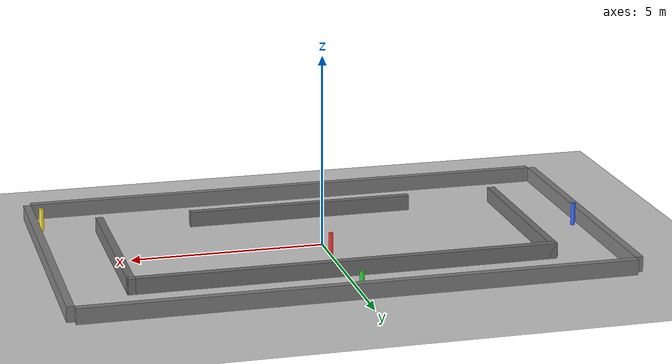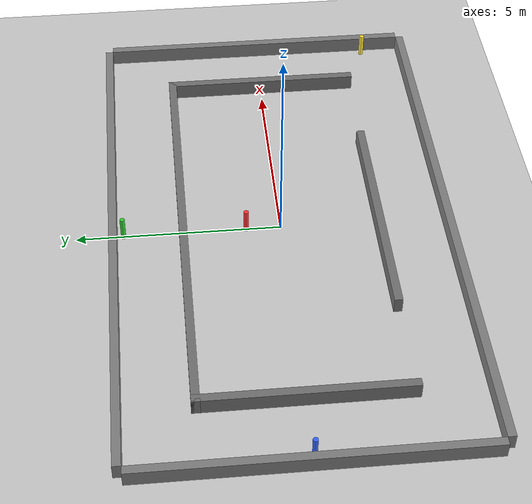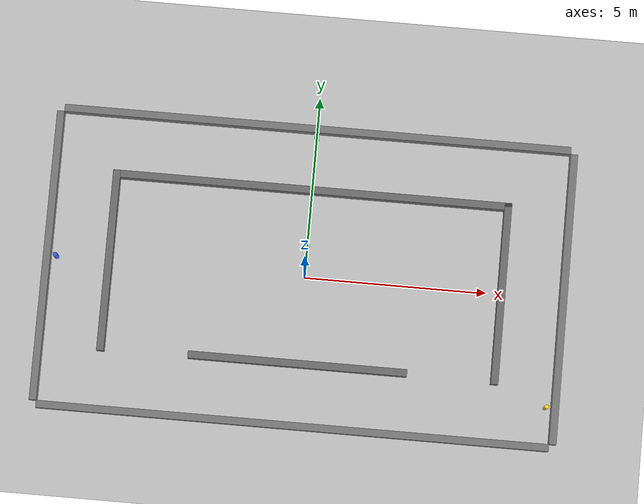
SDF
<sdf version='1.10'>
  <world name='teranova'>
    <physics name="dart" type="dart">
      <max_step_size>0.001</max_step_size>
      <real_time_factor>1</real_time_factor>
      <real_time_update_rate>1000</real_time_update_rate>
    </physics>
    <plugin filename="gz-sim-sensors-system" name="gz::sim::systems::Sensors">
  <render_engine>ogre2</render_engine>
  <frameName>base_link</frameName>
</plugin>
    <plugin name='gz::sim::systems::Physics' filename='gz-sim-physics-system'/>
    <plugin name='gz::sim::systems::UserCommands' filename='gz-sim-user-commands-system'/>
    <plugin name='gz::sim::systems::SceneBroadcaster' filename='gz-sim-scene-broadcaster-system'/>
    <plugin name='gz::sim::systems::Contact' filename='gz-sim-contact-system'/>
    <gravity>0 0 -9.8000000000000007</gravity>
    <magnetic_field>5.5644999999999998e-06 2.2875799999999999e-05 -4.2388400000000002e-05</magnetic_field>
    <atmosphere type='adiabatic'/>
    <scene>
      <ambient>0.400000006 0.400000006 0.400000006 1</ambient>
      <background>0.699999988 0.699999988 0.699999988 1</background>
      <shadows>true</shadows>
    </scene>

    <model name='ground_plane'>
      <static>true</static>
      <link name='link'>
        <collision name='collision'>
          <geometry>
            <plane>
              <normal>0 0 1</normal>
              <size>100 100</size>
            </plane>
          </geometry>
          <surface>
            <friction>
    <dart>
      <mu>1.0</mu>
      <mu2>0.8</mu2>
    </dart>
  </friction>
  <contact>
    <dart>
      <kp>3e5</kp>
      <kd>1.0</kd>
    </dart>
  </contact>
          </surface>
        </collision>
        <visual name='visual'>
          <geometry>
            <plane>
              <normal>0 0 1</normal>
              <size>100 100</size>
            </plane>
          </geometry>
          <material>
            <ambient>0.800000012 0.800000012 0.800000012 1</ambient>
            <diffuse>0.800000012 0.800000012 0.800000012 1</diffuse>
            <specular>0.800000012 0.800000012 0.800000012 1</specular>
          </material>
        </visual>
        <pose>0 0 0 0 0 0</pose>
        <inertial>
          <pose>0 0 0 0 0 0</pose>
          <mass>1</mass>
          <inertia>
            <ixx>1</ixx>
            <ixy>0</ixy>
            <ixz>0</ixz>
            <iyy>1</iyy>
            <iyz>0</iyz>
            <izz>1</izz>
          </inertia>
        </inertial>
        <enable_wind>false</enable_wind>
      </link>
      <pose>0 0 0 0 0 0</pose>
      <self_collide>false</self_collide>
    </model>

    <!-- Outer curbs (boundaries of the street) -->
    <!-- Top -->
    <model name="outer_top_curb">
      <static>true</static>
      <pose>0 4.1 0 0 0 0</pose>
      <link name="link">
        <pose>0 0 0.2 0 0 0</pose>
        <visual name="v">
          <geometry><box><size>14.0 0.2 0.4</size></box></geometry>
          <material><ambient>0.5 0.5 0.5 1</ambient></material>
          <laser_retro>200</laser_retro>
        </visual>
        <collision name="c">
          <geometry><box><size>14.0 0.2 0.4</size></box></geometry>
        </collision>
      </link>
    </model>
    <!-- Bottom -->
    <model name="outer_bottom_curb">
      <static>true</static>
      <pose>0 -4.1 0 0 0 0</pose>
      <link name="link">
        <pose>0 0 0.2 0 0 0</pose>
        <visual name="v">
          <geometry><box><size>14.0 0.2 0.4</size></box></geometry>
          <material><ambient>0.5 0.5 0.5 1</ambient></material>
          <laser_retro>200</laser_retro>
        </visual>
        <collision name="c">
          <geometry><box><size>14.0 0.2 0.4</size></box></geometry>
        </collision>
      </link>
    </model>
    <!-- Left -->
    <model name="outer_left_curb">
      <static>true</static>
      <pose>-7.1 0 0 0 0 1.57079632679</pose>
      <link name="link">
        <pose>0 0 0.2 0 0 0</pose>
        <visual name="v">
          <geometry><box><size>8.0 0.2 0.4</size></box></geometry>
          <material><ambient>0.5 0.5 0.5 1</ambient></material>
          <laser_retro>200</laser_retro>
        </visual>
        <collision name="c">
          <geometry><box><size>8.0 0.2 0.4</size></box></geometry>
        </collision>
      </link>
    </model>
    <!-- Right -->
    <model name="outer_right_curb">
      <static>true</static>
      <pose>7.1 0 0 0 0 1.57079632679</pose>
      <link name="link">
        <pose>0 0 0.2 0 0 0</pose>
        <visual name="v">
          <geometry><box><size>8.0 0.2 0.4</size></box></geometry>
          <material><ambient>0.5 0.5 0.5 1</ambient></material>
          <laser_retro>200</laser_retro>
        </visual>
        <collision name="c">
          <geometry><box><size>8.0 0.2 0.4</size></box></geometry>
        </collision>
      </link>
    </model>

    <!-- Inner curbs (island in the middle) -->
    <!-- Top inner -->
    <model name="inner_top_curb">
      <static>true</static>
      <!-- Center at y = 2.5 - 0.1 (outer face at y=+2.5) -->
      <pose>0 2.4 0 0 0 0</pose>
      <link name="link">
        <pose>0 0 0.2 0 0 0</pose>
        <visual name="v">
          <geometry><box><size>11.0 0.2 0.4</size></box></geometry>
          <material><ambient>0.45 0.45 0.45 1</ambient></material>
          <laser_retro>200</laser_retro>
        </visual>
        <collision name="c">
          <geometry><box><size>11.0 0.2 0.4</size></box></geometry>
        </collision>
      </link>
    </model>
    <!-- Bottom inner -->
    <model name="inner_bottom_curb">
      <static>true</static>
      <pose>0 -2.4 0 0 0 0</pose>
      <link name="link">
        <pose>0 0 0.2 0 0 0</pose>
        <visual name="v">
          <geometry><box><size>6.0 0.2 0.4</size></box></geometry>
          <material><ambient>0.45 0.45 0.45 1</ambient></material>
          <laser_retro>200</laser_retro>
        </visual>
        <collision name="c">
          <geometry><box><size>6.0 0.2 0.4</size></box></geometry>
        </collision>
      </link>
    </model>
    <!-- Left inner -->
    <model name="inner_left_curb">
      <static>true</static>
      <!-- Center at x = -5.5 + 0.1 (outer face at x=-5.5) -->
      <pose>-5.4 0 0 0 0 1.57079632679</pose>
      <link name="link">
        <pose>0 0 0.2 0 0 0</pose>
        <visual name="v">
          <geometry><box><size>5.0 0.2 0.4</size></box></geometry>
          <material><ambient>0.45 0.45 0.45 1</ambient></material>
          <laser_retro>200</laser_retro>
        </visual>
        <collision name="c">
          <geometry><box><size>5.0 0.2 0.4</size></box></geometry>
        </collision>
      </link>
    </model>
    <!-- Right inner -->
    <model name="inner_right_curb">
      <static>true</static>
      <pose>5.4 0 0 0 0 1.57079632679</pose>
      <link name="link">
        <pose>0 0 0.2 0 0 0</pose>
        <visual name="v">
          <geometry><box><size>5.0 0.2 0.4</size></box></geometry>
          <material><ambient>0.45 0.45 0.45 1</ambient></material>
          <laser_retro>200</laser_retro>
        </visual>
        <collision name="c">
          <geometry><box><size>5.0 0.2 0.4</size></box></geometry>
        </collision>
      </link>
    </model>

    <!-- Checkpoint markers (small posts the lidar can see) -->
    <!-- A: left mid-lane -->
    <model name="checkpoint_A">
      <static>true</static>
      <pose>-6.85 0 0 0 0 0</pose>
      <link name="link">
        <pose>0 0 0.3 0 0 0</pose>
        <visual name="v">
          <geometry><cylinder><radius>0.06</radius><length>0.6</length></cylinder></geometry>
         <material><ambient>0.2 0.4 1 1</ambient><diffuse>0.2 0.4 1 1</diffuse></material>
          <laser_retro>300</laser_retro>
        </visual>
        <collision name="c">
          <geometry><cylinder><radius>0.06</radius><length>0.6</length></cylinder></geometry>
        </collision>
      </link>
    </model>

    <!-- B: top mid-lane -->
    <model name="checkpoint_B">
      <static>true</static>
      <pose>0 3.85 0 0 0 0</pose>
      <link name="link">
        <pose>0 0 0.3 0 0 0</pose>
        <visual name="v">
          <geometry><cylinder><radius>0.06</radius><length>0.6</length></cylinder></geometry>
          <material>
  <ambient>0.2 0.8 0.2 1</ambient>
  <diffuse>0.2 0.8 0.2 1</diffuse>
</material>
          <laser_retro>300</laser_retro>
        </visual>
        <collision name="c">
          <geometry><cylinder><radius>0.06</radius><length>0.6</length></cylinder></geometry>
        </collision>
      </link>
    </model>

    <!-- C: right mid-lane -->
    <model name="checkpoint_C">
      <static>true</static>
      <pose>6.85 -3 0 0 0 0</pose>
      <link name="link">
        <pose>0 0 0.3 0 0 0</pose>
        <visual name="v">
          <geometry><cylinder><radius>0.06</radius><length>0.6</length></cylinder></geometry>
          <material>
  <ambient>1 0.9 0.2 1</ambient>
  <diffuse>1 0.9 0.2 1</diffuse>
</material>
          <laser_retro>300</laser_retro>
        </visual>
        <collision name="c">
          <geometry><cylinder><radius>0.06</radius><length>0.6</length></cylinder></geometry>
        </collision>
      </link>
    </model>

    <!-- D: middle Station -->
    <model name="checkpoint_D">
      <static>true</static>
      <pose>0 0.85 0 0 0 0</pose>
      <link name="link">
        <pose>0 0 0.3 0 0 0</pose>
        <visual name="v">
          <geometry><cylinder><radius>0.06</radius><length>0.6</length></cylinder></geometry>
<material>
  <ambient>1 0.2 0.2 1</ambient>
  <diffuse>1 0.2 0.2 1</diffuse>
  <!-- optional -->
  <specular>0.1 0.1 0.1 1</specular>
</material>
          <laser_retro>300</laser_retro>
        </visual>
        <collision name="c">
          <geometry><cylinder><radius>0.06</radius><length>0.6</length></cylinder></geometry>
        </collision>
      </link>
    </model>

    <light name='sun' type='directional'>
      <pose>0 0 10 0 0 0</pose>
      <cast_shadows>true</cast_shadows>
      <intensity>1</intensity>
      <direction>-0.5 0.10000000000000001 -0.90000000000000002</direction>
      <diffuse>0.800000012 0.800000012 0.800000012 1</diffuse>
      <specular>0.200000003 0.200000003 0.200000003 1</specular>
      <attenuation>
        <range>1000</range>
        <linear>0.01</linear>
        <constant>0.90000000000000002</constant>
        <quadratic>0.001</quadratic>
      </attenuation>
      <spot>
        <inner_angle>0</inner_angle>
        <outer_angle>0</outer_angle>
        <falloff>0</falloff>
      </spot>
    </light>
  </world>
</sdf>
